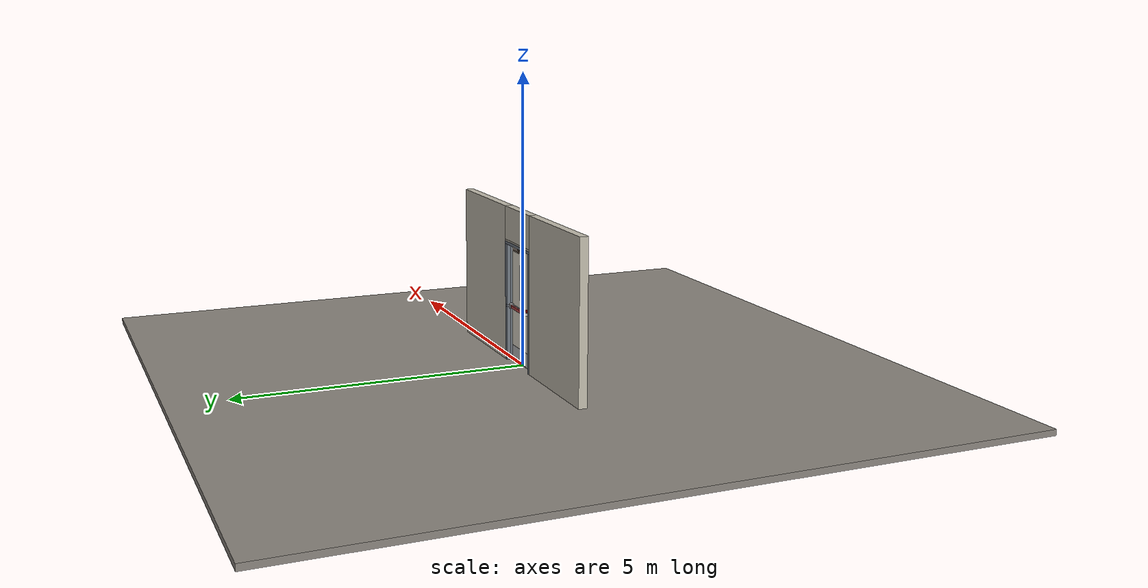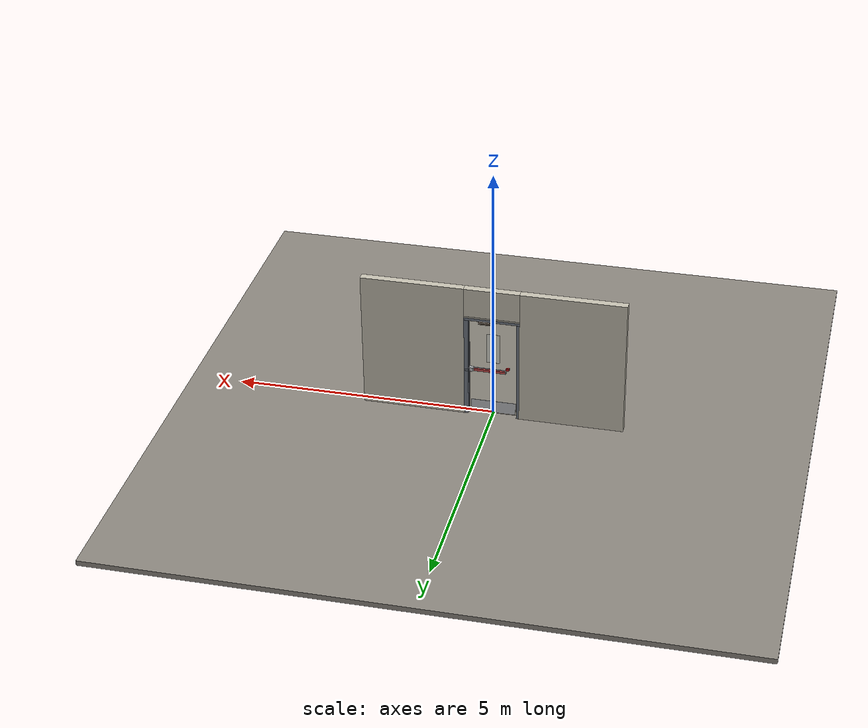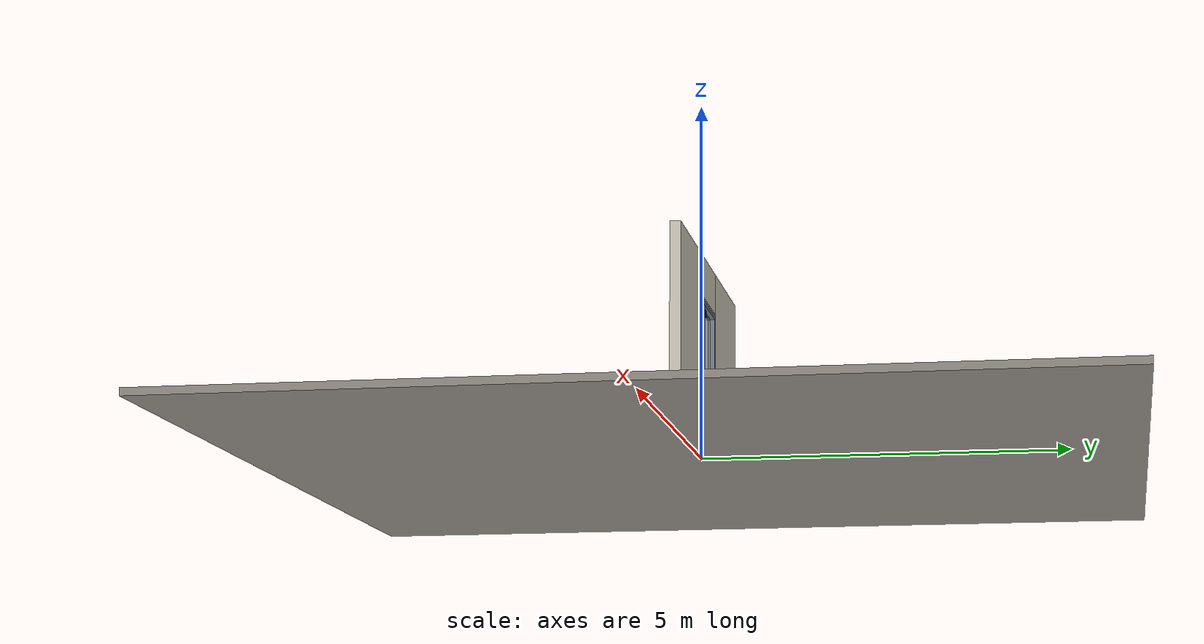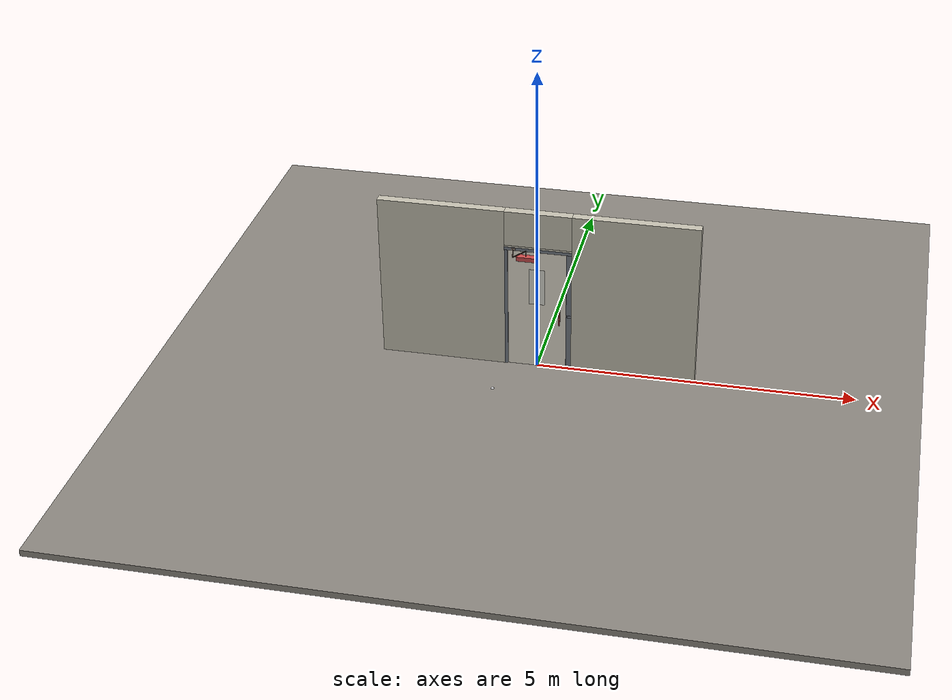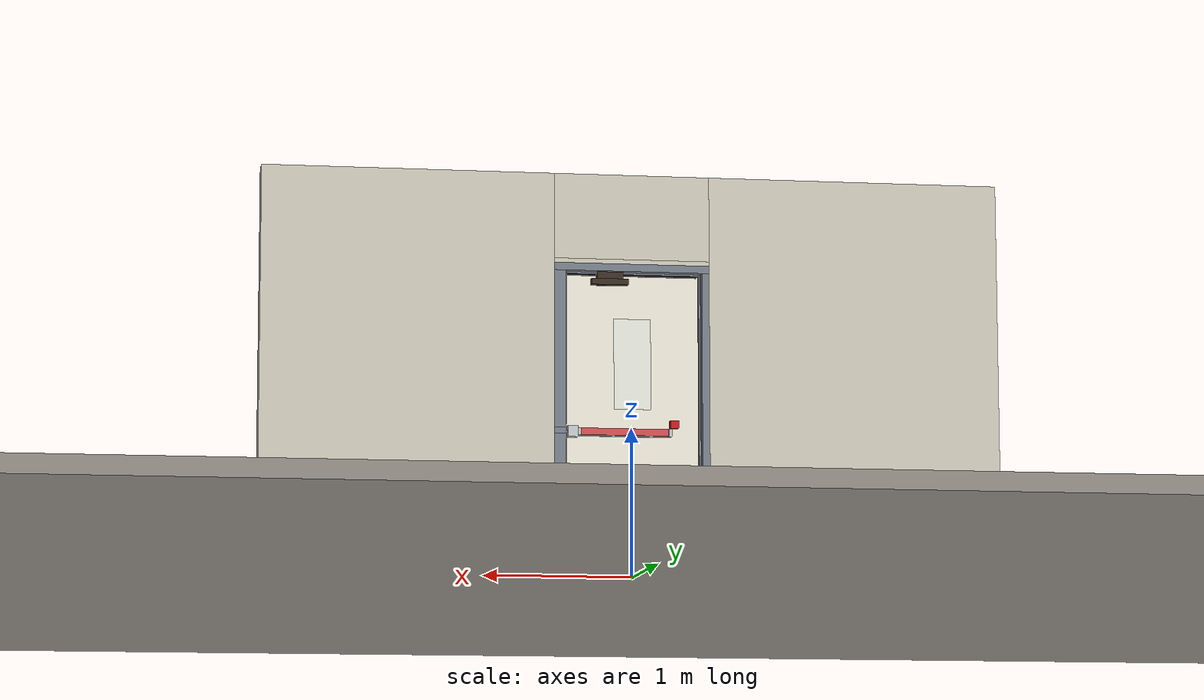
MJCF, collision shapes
<?xml version="1.0" ?>
<mujoco model="db0914_swing_single_full">
  <compiler angle="radian" meshdir="../../hardware" texturedir="../../textures" autolimits="true" inertiafromgeom="false"/>
  <option timestep="0.002" integrator="implicitfast" cone="elliptic" impratio="10" noslip_iterations="3">
    <flag multiccd="enable"/>
  </option>
  <size memory="16M"/>
  <default>
    <geom condim="4" solref="0.005 1" solimp="0.95 0.99 0.001"/>
    <joint solreflimit="0.005 1" solimplimit="0.95 0.99 0.001"/>
    <tendon solreflimit="0.005 1"/>
    <equality solref="0.002 1"/>
  </default>
  <visual>
    <headlight ambient="0.4 0.4 0.4" diffuse="0.7 0.7 0.7" specular="0.2 0.2 0.2"/>
    <quality shadowsize="4096"/>
    <map znear="0.01" zfar="60"/>
  </visual>
  <asset>
    <mesh name="closer_body_fdc4667657" file="closer_body_fdc4667657.obj"/>
    <mesh name="hinge_e22b26c0c1" file="hinge_e22b26c0c1.obj"/>
    <mesh name="hinge_jamb_e1d088f8dc" file="hinge_jamb_e1d088f8dc.obj"/>
    <mesh name="pull_f8d79d6331" file="pull_f8d79d6331.obj"/>
    <mesh name="touchbar_pad_2729a067b4" file="touchbar_pad_2729a067b4.obj"/>
    <material name="mat_floor" rgba="0.55 0.53 0.5 1" specular="0.2" shininess="0.15" reflectance="0"/>
    <material name="mat_wall" rgba="0.78 0.76 0.7 1" specular="0.2" shininess="0.1" reflectance="0"/>
    <material name="mat_leaf" rgba="0.9 0.88 0.82 1" specular="0.2" shininess="0.31" reflectance="0"/>
    <material name="mat_glass" rgba="0.85 0.92 0.95 0.25" specular="0.2" shininess="0.95" reflectance="0.1"/>
    <material name="mat_hinge" rgba="0.65 0.66 0.68 1" specular="0.74" shininess="0.5" reflectance="0.36"/>
    <material name="mat_op_stainless" rgba="0.75 0.76 0.77 1" specular="0.8" shininess="0.65" reflectance="0.4"/>
    <material name="mat_alarm" rgba="0.75 0.1 0.1 1" specular="0.2" shininess="0.5" reflectance="0"/>
    <material name="mat_bolt" rgba="0.75 0.76 0.77 1" specular="0.8" shininess="0.65" reflectance="0.4"/>
    <material name="mat_maglock" rgba="0.22 0.17 0.13 1" specular="0.8" shininess="0.6" reflectance="0.4"/>
    <material name="mat_frame" rgba="0.45 0.48 0.52 1" specular="0.32" shininess="0.6" reflectance="0.08"/>
    <material name="mat_seal" rgba="0.1 0.1 0.1 1" specular="0.2" shininess="0.1" reflectance="0"/>
    <material name="mat_closer" rgba="0.22 0.17 0.13 1" specular="0.8" shininess="0.6" reflectance="0.4"/>
    <material name="mat_kick" rgba="0.75 0.76 0.77 1" specular="0.8" shininess="0.65" reflectance="0.4"/>
    <material name="mat_stop" rgba="0.9 0.9 0.92 1" specular="0.8" shininess="0.9" reflectance="0.4"/>
    <texture name="skybox" type="skybox" builtin="gradient" rgb1="0.6 0.7 0.85" rgb2="0.9 0.92 0.95" width="256" height="256"/>
  </asset>
  <worldbody>
    <light name="sun" pos="1.5 -2.5 4" dir="-0.3 0.5 -0.8" directional="true" diffuse="0.8 0.8 0.8" specular="0.3 0.3 0.3" castshadow="true"/>
    <light name="fill" pos="-1.5 2.5 3" dir="0.3 -0.5 -0.7" directional="true" diffuse="0.35 0.35 0.4" castshadow="false"/>
    <camera name="robot_view" pos="0 -2.498687 1.734312" xyaxes="1 0 0 0 0.26963 0.962964" fovy="52"/>
    <camera name="far_view" pos="0 2.585687 1.734312" xyaxes="-1 0 0 0 -0.26963 0.962964" fovy="52"/>
    <camera name="iso" pos="1.932062 -2.091938 2.141063" xyaxes="0.741536 0.670913 0 -0.242917 0.268487 0.932151" fovy="46"/>
    <camera name="detail_handle" pos="0.5465 -0.897 1.245" xyaxes="0.97561 0.219512 0 -0.070934 0.315262 0.94635" fovy="38"/>
    <geom name="floor" type="box" size="6 6 0.05" pos="0 0 -0.05" material="mat_floor" group="0" contype="1" conaffinity="1" friction="0.8 0.005 0.0001" density="2400"/>
    <geom name="wall_left" type="box" size="0.99475 0.0725 1.35" pos="-1.50525 0.0435 1.35" material="mat_wall" group="0" contype="1" conaffinity="1" friction="0.6 0.005 0.0001" density="800"/>
    <geom name="wall_right" type="box" size="0.97975 0.0725 1.35" pos="1.52025 0.0435 1.35" material="mat_wall" group="0" contype="1" conaffinity="1" friction="0.6 0.005 0.0001" density="800"/>
    <geom name="wall_header" type="box" size="0.5255 0.0725 0.2875" pos="0.015 0.0435 2.4125" material="mat_wall" group="0" contype="1" conaffinity="1" friction="0.6 0.005 0.0001" density="800"/>
    <geom name="hinge_0_jamb" type="mesh" mesh="hinge_jamb_e1d088f8dc" pos="-0.4575 -0.029 0.259" material="mat_hinge" group="1" contype="0" conaffinity="0" density="7850"/>
    <geom name="hinge_1_jamb" type="mesh" mesh="hinge_jamb_e1d088f8dc" pos="-0.4575 -0.029 1.025" material="mat_hinge" group="1" contype="0" conaffinity="0" density="7850"/>
    <geom name="hinge_2_jamb" type="mesh" mesh="hinge_jamb_e1d088f8dc" pos="-0.4575 -0.029 1.861" material="mat_hinge" group="1" contype="0" conaffinity="0" density="7850"/>
    <geom name="leaf_maglock_body" type="box" size="0.125 0.025 0.02" pos="0.1565 0.057 1.98" material="mat_maglock" group="0" contype="1" conaffinity="1" friction="0.6 0.005 0.0001" density="2000"/>
    <geom name="leaf_maglock_bracket" type="box" size="0.09 0.025 0.0225" pos="0.1565 0.057 2.0225" material="mat_maglock" group="1" contype="0" conaffinity="0" density="7850"/>
    <geom name="jamb_hinge" type="box" size="0.025 0.0725 1.0225" pos="-0.4855 0.0435 1.0225" material="mat_frame" group="0" contype="1" conaffinity="1" friction="0.6 0.005 0.0001" density="300"/>
    <geom name="strike_965_wall_n" type="box" size="0.04 0.0305 0.02" pos="0.5005 0.0855 0.965" material="mat_frame" group="0" contype="1" conaffinity="1" friction="0.6 0.005 0.0001" density="300"/>
    <geom name="strike_965_wall_p" type="box" size="0.04 0.008 0.02" pos="0.5005 0.025 0.965" material="mat_frame" group="0" contype="1" conaffinity="1" friction="0.6 0.005 0.0001" density="300"/>
    <geom name="strike_965_ramp" type="box" size="0.04 0.034482 0.02" pos="0.508781 -0.0044 0.965" quat="0.989198 0 0 0.146587" material="mat_frame" group="0" contype="1" conaffinity="1" friction="0.12 0.005 0.0001" density="300"/>
    <geom name="strike_965_back" type="box" size="0.0285 0.011 0.02" pos="0.512 0.044 0.965" material="mat_frame" group="0" contype="1" conaffinity="1" friction="0.6 0.005 0.0001" density="300"/>
    <geom name="jamb_strike_0" type="box" size="0.04 0.0725 0.4725" pos="0.5005 0.0435 0.4725" material="mat_frame" group="0" contype="1" conaffinity="1" friction="0.6 0.005 0.0001" density="300"/>
    <geom name="jamb_strike_1" type="box" size="0.04 0.0725 0.53" pos="0.5005 0.0435 1.515" material="mat_frame" group="0" contype="1" conaffinity="1" friction="0.6 0.005 0.0001" density="300"/>
    <geom name="jamb_head" type="box" size="0.5255 0.0725 0.025" pos="0.015 0.0435 2.07" material="mat_frame" group="0" contype="1" conaffinity="1" friction="0.6 0.005 0.0001" density="300"/>
    <geom name="head_stud" type="box" size="0.5255 0.0725 0.015" pos="0.015 0.0435 2.11" material="mat_wall" group="0" contype="1" conaffinity="1" friction="0.6 0.005 0.0001" density="500"/>
    <geom name="stop_hinge" type="box" size="0.0055 0.016 1.0225" pos="-0.455 0.0385 1.0225" material="mat_frame" group="0" contype="1" conaffinity="1" friction="0.6 0.005 0.0001" density="300"/>
    <geom name="stop_strike" type="box" size="0.0055 0.016 0.45875" pos="0.455 0.0385 0.45875" material="mat_frame" group="0" contype="1" conaffinity="1" friction="0.6 0.005 0.0001" density="300"/>
    <geom name="stop_strike_1" type="box" size="0.0055 0.016 0.51625" pos="0.455 0.0385 1.52875" material="mat_frame" group="0" contype="1" conaffinity="1" friction="0.6 0.005 0.0001" density="300"/>
    <geom name="stop_head" type="box" size="0.4605 0.016 0.0055" pos="0 0.0385 2.0395" material="mat_frame" group="0" contype="1" conaffinity="1" friction="0.6 0.005 0.0001" density="300"/>
    <geom name="seal_hinge" type="box" size="0.004 0.004 1.0225" pos="-0.4575 0.026 1.0225" material="mat_seal" group="1" contype="0" conaffinity="0" density="1100"/>
    <geom name="seal_strike" type="box" size="0.004 0.004 0.45875" pos="0.4575 0.026 0.45875" material="mat_seal" group="1" contype="0" conaffinity="0" density="1100"/>
    <geom name="seal_strike_1" type="box" size="0.004 0.004 0.51625" pos="0.4575 0.026 1.52875" material="mat_seal" group="1" contype="0" conaffinity="0" density="1100"/>
    <geom name="seal_head" type="box" size="0.4405 0.004 0.008" pos="0 0.026 2.033" material="mat_seal" group="1" contype="0" conaffinity="0" density="1100"/>
    <geom name="closer_bracket" type="box" size="0.03 0.012 0.014" pos="-0.3605 -0.041 2.075" material="mat_closer" group="1" contype="0" conaffinity="0" density="2700"/>
    <geom name="floor_stop_dome" type="sphere" size="0.025" pos="-0.545135 -0.801201 0" material="mat_stop" group="0" contype="1" conaffinity="1" friction="0.6 0.005 0.0001" density="7000"/>
    <site name="approach_point" pos="0 -1.5 0" quat="1 0 0 0" size="0.05" rgba="0.2 0.9 0.2 0.5" group="4"/>
    <site name="goal_point" pos="0 1.5 0" quat="1 0 0 0" size="0.05" rgba="0.2 0.9 0.2 0.5" group="4"/>
    <site name="door_plane_center" pos="0 0 1.0225" quat="1 0 0 0" size="0.02" rgba="0.2 0.9 0.2 0.5" group="4"/>
    <body name="leaf" pos="-0.4605 0 0">
      <inertial pos="0.43322 -0.015439 1.20812" mass="50.527036" quat="-0.492478 0.467252 0.516749 0.521643" diaginertia="3.154391072 22.126588821 25.1690311"/>
      <joint name="leaf_hinge" type="hinge" axis="0 0 -1" pos="0.003 -0.029 0" limited="true" range="0 1.658063" solreflimit="0.02 1" damping="12.25611" frictionloss="1.67037" stiffness="10.994423" springref="-2.062864" armature="0.02"/>
      <geom name="leaf_slab" type="box" size="0.457 0.022 1.016" pos="0.46 0 1.025" material="mat_leaf" group="0" contype="1" conaffinity="1" friction="0.4 0.005 0.0001" density="1"/>
      <geom name="leaf_glass_0" type="box" size="0.125 0.0228 0.3048" pos="0.46 0 1.4314" material="mat_glass" group="1" contype="0" conaffinity="0" density="1"/>
      <geom name="hinge_0" type="mesh" mesh="hinge_e22b26c0c1" pos="0.003 -0.029 0.259" material="mat_hinge" group="1" contype="0" conaffinity="0" density="7850"/>
      <geom name="hinge_1" type="mesh" mesh="hinge_e22b26c0c1" pos="0.003 -0.029 1.025" material="mat_hinge" group="1" contype="0" conaffinity="0" density="7850"/>
      <geom name="hinge_2" type="mesh" mesh="hinge_e22b26c0c1" pos="0.003 -0.029 1.861" material="mat_hinge" group="1" contype="0" conaffinity="0" density="7850"/>
      <geom name="leaf_exit_device_rail" type="box" size="0.31705 0.006 0.025" pos="0.51995 0.028 0.965" material="mat_op_stainless" group="0" contype="1" conaffinity="1" friction="0.6 0.005 0.0001" density="3000"/>
      <geom name="leaf_exit_device_rail_end_n" type="box" size="0.01 0.0325 0.025" pos="0.2129 0.0545 0.965" material="mat_op_stainless" group="0" contype="1" conaffinity="1" friction="0.6 0.005 0.0001" density="3000"/>
      <geom name="leaf_exit_device_rail_end_p" type="box" size="0.01 0.0325 0.025" pos="0.827 0.0545 0.965" material="mat_op_stainless" group="0" contype="1" conaffinity="1" friction="0.6 0.005 0.0001" density="3000"/>
      <geom name="leaf_exit_device_case" type="box" size="0.034 0.034125 0.0375" pos="0.871 0.056125 0.965" material="mat_op_stainless" group="0" contype="1" conaffinity="1" friction="0.6 0.005 0.0001" density="3000"/>
      <geom name="leaf_exit_device_alarm" type="box" size="0.03 0.02 0.025" pos="0.1779 0.042 1.025" material="mat_alarm" group="1" contype="0" conaffinity="0" density="1500"/>
      <geom name="leaf_far_pull_n" type="mesh" mesh="pull_f8d79d6331" pos="0.827 -0.022 0.965" quat="0.707107 0.707107 0 0" material="mat_op_stainless" group="1" contype="0" conaffinity="0" density="3000"/>
      <geom name="leaf_far_pull_col_n" type="capsule" size="0.0125 0.13" pos="0.827 -0.097 0.965" material="mat_op_stainless" group="3" contype="1" conaffinity="1" rgba="0.8 0.3 0.3 0.25" friction="0.7 0.01 0.0001" density="3000"/>
      <geom name="leaf_maglock_armature" type="box" size="0.09 0.005 0.02" pos="0.617 0.027 1.98" material="mat_maglock" group="1" contype="0" conaffinity="0" density="7800"/>
      <geom name="closer_body" type="mesh" mesh="closer_body_fdc4667657" pos="0.3 -0.022 1.952" quat="0.707107 0.707107 0 0" material="mat_closer" group="1" contype="0" conaffinity="0" density="2000"/>
      <geom name="closer_body_col" type="box" size="0.145 0.05 0.035" pos="0.3 -0.072 1.952" material="mat_closer" group="3" contype="1" conaffinity="1" rgba="0.8 0.3 0.3 0.25" friction="0.6 0.005 0.0001" density="2000"/>
      <geom name="closer_pinion_shaft" type="cylinder" size="0.008 0.0615" pos="0.3 -0.072 2.0135" material="mat_closer" group="1" contype="0" conaffinity="0" density="2700"/>
      <geom name="kick_plate_p" type="box" size="0.427 0.0008 0.125" pos="0.46 0.0228 0.144" material="mat_kick" group="2" contype="0" conaffinity="0" density="7900"/>
      <site name="leaf_far_pull_grip_n" pos="0.827 -0.097 0.965" quat="1 0 0 0" size="0.012" rgba="0.2 0.9 0.2 0.5" group="4"/>
      <site name="leaf_edge_mid" pos="0.917 0 1.016" quat="1 0 0 0" size="0.02" rgba="0.2 0.9 0.2 0.5" group="4"/>
      <body name="leaf_exit_device" pos="0.51995 0.022 0.965">
        <inertial pos="0 0.05 0" mass="4.76361" quat="0 0 0.707107 0.707107" diaginertia="0.00116113 0.137653089 0.138099678"/>
        <joint name="leaf_exit_device_slide" type="slide" axis="0 -1 0" limited="true" range="0 0.016" damping="153.575154" frictionloss="0.5" stiffness="1200" springref="-0.015" armature="0.15"/>
        <geom name="leaf_exit_device_pad" type="mesh" mesh="touchbar_pad_2729a067b4" pos="0 0 0" quat="-0.707107 0.707107 0 0" material="mat_op_stainless" group="1" contype="0" conaffinity="0" density="3000"/>
        <geom name="leaf_exit_device_pad_col" type="box" size="0.29405 0.015 0.0225" pos="0 0.05 0" material="mat_op_stainless" group="3" contype="1" conaffinity="1" rgba="0.8 0.3 0.3 0.25" friction="0.8 0.01 0.0001" density="3000"/>
        <site name="leaf_exit_device_push" pos="0 0.065 0" quat="1 0 0 0" size="0.015" rgba="0.2 0.9 0.2 0.5" group="4"/>
      </body>
      <body name="leaf_latch_bolt" pos="0.917 0.044 0.965">
        <inertial pos="-0.0055 0 0" mass="0.102826" quat="0.92388 -0.382683 0 0" diaginertia="0.000004365 0.000018287 0.000018287"/>
        <joint name="leaf_latch_bolt_slide" type="slide" axis="-1 0 0" limited="true" range="0 0.019" damping="2" frictionloss="0.3" stiffness="800" springref="-0.01" armature="0.1"/>
        <geom name="leaf_latch_bolt_capsule" type="capsule" size="0.0095 0.015" pos="-0.0055 0 0" quat="0.707107 0 0.707107 0" material="mat_bolt" group="0" contype="1" conaffinity="1" friction="0.2 0.005 0.0001" density="8500"/>
      </body>
      <body name="closer_arm_main" pos="0.3 -0.072 2.075" quat="0.454107 0 0 -0.890947">
        <inertial pos="0.14 0 0" mass="0.12096" quat="1 0 0 0" diaginertia="0.000003588 0.00079128 0.000792852"/>
        <joint name="closer_pinion" type="hinge" axis="0 0 1" limited="false" damping="0.01" armature="0.002"/>
        <geom name="closer_arm_main_geom" type="box" size="0.14 0.008 0.005" pos="0.14 0 0" material="mat_closer" group="1" contype="0" conaffinity="0" density="2700"/>
        <body name="closer_arm_fore" pos="0.28 0 0" quat="-0.373215 0 0 0.927745">
          <inertial pos="0.128088 0 0" mass="0.076531" quat="1 0 0 0" diaginertia="0.000001771 0.000437665 0.000438201"/>
          <joint name="closer_elbow" type="hinge" axis="0 0 1" limited="false" damping="0.01" armature="0.002"/>
          <geom name="closer_arm_fore_geom" type="box" size="0.1125 0.007 0.004" pos="0.1125 0 0" material="mat_closer" group="1" contype="0" conaffinity="0" density="2700"/>
          <geom name="closer_fore_neck" type="box" size="0.0175 0.003 0.003" pos="0.2425 0 0" material="mat_closer" group="1" contype="0" conaffinity="0" density="2700"/>
          <geom name="closer_fore_pivot" type="cylinder" size="0.005 0.012" pos="0.26 0 0" material="mat_closer" group="1" contype="0" conaffinity="0" density="2700"/>
        </body>
      </body>
    </body>
  </worldbody>
  <tendon>
    <fixed name="leaf_latch_bolt_coupling" limited="true" range="0 10">
      <joint joint="leaf_latch_bolt_slide" coef="1"/>
      <joint joint="leaf_exit_device_slide" coef="-1.357143"/>
    </fixed>
  </tendon>
  <equality>
    <weld name="leaf_maglock" body1="leaf" body2="world" active="true"/>
    <connect name="closer_arm_connect" body1="closer_arm_fore" body2="world" anchor="0.26 0 0" active="true"/>
  </equality>
  <contact>
    <exclude body1="closer_arm_main" body2="leaf"/>
    <exclude body1="closer_arm_fore" body2="leaf"/>
    <exclude body1="closer_arm_main" body2="closer_arm_fore"/>
  </contact>
  <sensor>
    <jointpos name="leaf_hinge_pos" joint="leaf_hinge"/>
    <jointvel name="leaf_hinge_vel" joint="leaf_hinge"/>
    <jointpos name="leaf_exit_device_slide_pos" joint="leaf_exit_device_slide"/>
    <jointvel name="leaf_exit_device_slide_vel" joint="leaf_exit_device_slide"/>
    <jointpos name="leaf_latch_bolt_slide_pos" joint="leaf_latch_bolt_slide"/>
    <jointvel name="leaf_latch_bolt_slide_vel" joint="leaf_latch_bolt_slide"/>
  </sensor>
</mujoco>
